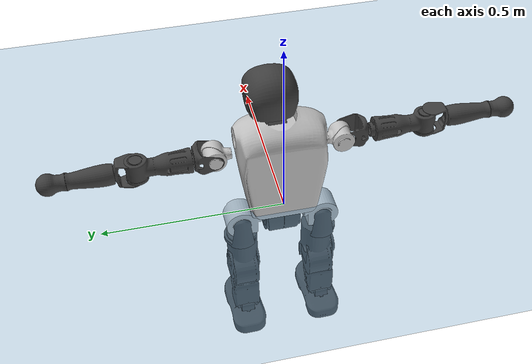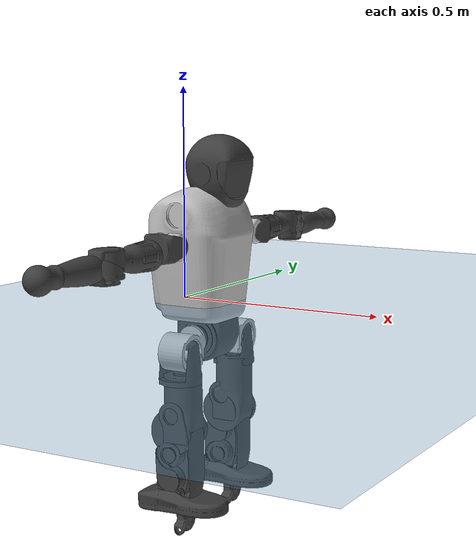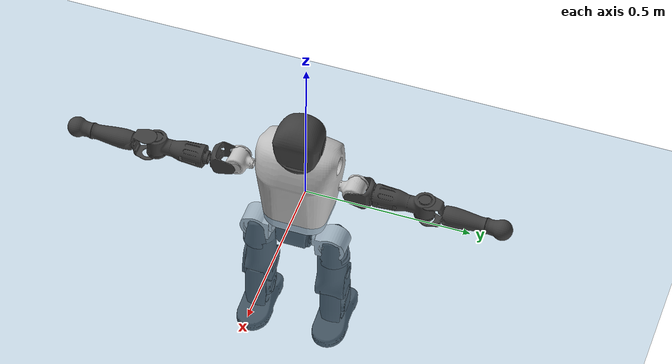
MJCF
<mujoco model="T1">
  <compiler angle="radian" assetdir="assets" balanceinertia="true" inertiafromgeom="false"/>

  <option timestep="0.005" density="1.2" viscosity="2e-05"/>

  <size nkey="1"/>

  <visual>
    <quality shadowsize="8192"/>
    <map shadowclip="0.5"/>
  </visual>

  <default>
    <default class="/">
      <joint armature="0.01" damping="0.01" frictionloss="0.1"/>
      <geom contype="0" conaffinity="0" group="1" solref="-1000 -80"/>
      <site size="0.01 0.005 0.005" group="5"/>
      <general forcelimited="true" biastype="affine" gainprm="25" biasprm="0 -25 -0.6"/>
      <default class="t1">
        <geom rgba="0.25 0.25 0.25 1"/>
        <default class="visual">
          <geom type="mesh" group="2"/>
        </default>
        <default class="collision">
          <geom group="3"/>
        </default>
        <default class="foot">
          <geom size="0.1115 0.05 0.015" type="box" condim="6" group="4" priority="1" solimp="0.015 1 0.015"/>
        </default>
        <default class="reward_collision_sphere">
          <geom group="5" rgba="1 0 0 1"/>
        </default>
      </default>
    </default>
  </default>

  <asset>
    <texture type="skybox" colorspace="auto" name="//unnamed_texture_0" builtin="gradient" rgb1="0.95 0.95 0.95" rgb2="0.95 0.95 0.95" width="100" height="600"/>
    <texture type="2d" colorspace="auto" name="texplane" builtin="checker" rgb1="0.345 0.575 0.748" rgb2="0.345 0.575 0.748" markrgb="1 1 1" width="512" height="512"/>
    <material name="MatPlane" class="/" texture="texplane" texuniform="true" texrepeat="2 2" specular="0.9"/>
    <mesh name="Trunk" class="/" file="Trunk.stl"/>
    <mesh name="H1" class="/" file="H1.stl"/>
    <mesh name="H2" class="/" file="H2.stl"/>
    <mesh name="AL1" class="/" file="AL1.stl"/>
    <mesh name="AL2" class="/" file="AL2.stl"/>
    <mesh name="AL3" class="/" file="AL3.stl"/>
    <mesh name="left_hand_link" class="/" file="left_hand_link.stl"/>
    <mesh name="AR1" class="/" file="AR1.stl"/>
    <mesh name="AR2" class="/" file="AR2.stl"/>
    <mesh name="AR3" class="/" file="AR3.stl"/>
    <mesh name="right_hand_link" class="/" file="right_hand_link.stl"/>
    <mesh name="Waist" class="/" file="Waist.stl"/>
    <mesh name="Hip_Pitch_Left" class="/" file="Hip_Pitch_Left.stl"/>
    <mesh name="Hip_Roll_Left" class="/" file="Hip_Roll_Left.stl"/>
    <mesh name="Hip_Yaw_Left" class="/" file="Hip_Yaw_Left.stl"/>
    <mesh name="Shank_Left" class="/" file="Shank_Left.stl"/>
    <mesh name="Ankle_Cross_Left" class="/" file="Ankle_Cross_Left.stl"/>
    <mesh name="left_foot_link" class="/" file="left_foot_link.stl"/>
    <mesh name="Hip_Pitch_Right" class="/" file="Hip_Pitch_Right.stl"/>
    <mesh name="Hip_Roll_Right" class="/" file="Hip_Roll_Right.stl"/>
    <mesh name="Hip_Yaw_Right" class="/" file="Hip_Yaw_Right.stl"/>
    <mesh name="Shank_Right" class="/" file="Shank_Right.stl"/>
    <mesh name="Ankle_Cross_Right" class="/" file="Ankle_Cross_Right.stl"/>
    <mesh name="right_foot_link" class="/" file="right_foot_link.stl"/>
  </asset>

  <worldbody>
    <geom name="floor" class="/" size="100 100 0.125" type="plane" group="0" material="MatPlane"/>
    <light name="toplight_shadow" class="/" pos="0 0 5" dir="0.0990148 0.0990148 -0.990148" type="directional" ambient="0.04 0.04 0.04" diffuse="0.55 0.55 0.55" specular="0.12 0.12 0.12"/>
    <light name="toplight_fill" class="/" pos="0 0 5" dir="0.0990148 0.0990148 -0.990148" type="directional" castshadow="false" ambient="0.04 0.04 0.04" diffuse="0.3 0.3 0.3" specular="0.08 0.08 0.08"/>
    <body name="trunk" childclass="t1" pos="-0.00155752 -0.000357043 -0.00799581" quat="1 0.000124042 -0.000279831 -0.000277181">
      <inertial pos="0.0650175 -0.0031153 0.0757744" quat="0.999638 -0.0169008 -0.0201387 -0.00566054" mass="13.1874" diaginertia="0.208991 0.169012 0.0106185"/>
      <joint name="//unnamed_joint_0" type="free" armature="0" damping="0" frictionloss="0"/>
      <geom name="//unnamed_geom_1" class="visual" rgba="0.76 0.76 0.76 1" mesh="Trunk"/>
      <geom name="//unnamed_geom_2" class="collision" size="0.0759684 0.101291 0.151937" pos="0.0699467 0 0.0843658" type="box"/>
      <geom name="//unnamed_geom_3" class="reward_collision_sphere" size="0.116485" pos="0.0699467 0 0.0703048"/>
      <geom name="//unnamed_geom_4" class="reward_collision_sphere" size="0.0151937" pos="0.0699467 0.0994422 0"/>
      <geom name="//unnamed_geom_5" class="reward_collision_sphere" size="0.0151937" pos="0.0699467 -0.0994422 0"/>
      <geom name="//unnamed_geom_6" class="reward_collision_sphere" size="0.0151937" pos="0.0699467 0.12518 0.126549"/>
      <geom name="//unnamed_geom_7" class="reward_collision_sphere" size="0.0151937" pos="0.0699467 -0.12518 0.126549"/>
      <site name="imu" pos="-0.05753 0.0470674 -0.0162435" size="0.0101291"/>
      <camera name="track" pos="0 -2.33982 0" quat="0.707107 0.707107 0 0" mode="trackcom"/>
      <camera name="ego_camera" pos="0.142225 0 0.29528" quat="-0.5 -0.5 0.5 0.5"/>
      <body name="H1" pos="0.0755129 0.00509631 0.167093" quat="0.999997 0.00195854 -0.00139821 -0.000549329">
        <inertial pos="-0.00272056 -0.00155191 0.0408555" quat="0.762347 -0.0074527 -0.00417611 0.647113" mass="0.439448" diaginertia="0.000465237 0.000480167 2.23493e-05"/>
        <joint name="AAHead_yaw" pos="0 0 0" axis="0.00101978 -0.00921363 0.999957" range="-1.63366 1.45751" armature="0.00941246" damping="0.00798823" frictionloss="0.108427"/>
        <geom name="//unnamed_geom_8" class="visual" mesh="H1"/>
        <body name="H2" pos="0.000538655 0.0100334 0.0433016" quat="1 0.000297174 0.000478826 0.00064307">
          <inertial pos="-0.00284456 -0.00911744 0.0630972" quat="0.988393 0.0978834 -0.0795095 -0.0847179" mass="0.574375" diaginertia="0.0043231 0.00441775 0.000301219"/>
          <joint name="Head_pitch" pos="0 0 0" axis="0.00320568 -0.999983 -0.00490706" range="-1.21925 0.224974" armature="0.0149187" damping="0.0293148" frictionloss="0.101075"/>
          <geom name="//unnamed_geom_9" class="visual" mesh="H2"/>
          <geom name="//unnamed_geom_10" class="collision" size="0.0810329" pos="0.0116578 0 0.0773353"/>
          <geom name="//unnamed_geom_11" class="reward_collision_sphere" size="0.0911621" pos="0.0233156 0 0.0703048"/>
        </body>
      </body>
      <body name="AL1" pos="0.0748933 0.127984 0.156416" quat="0.999998 -0.000353862 0.000595712 0.00182362">
        <inertial pos="-0.00453048 0.0484776 -0.010199" quat="0.51116 0.495643 -0.515121 0.477184" mass="0.568597" diaginertia="0.00300837 0.00288371 4.91783e-05"/>
        <joint name="Left_Shoulder_Pitch" pos="0 0 0" axis="0.00766674 0.999953 -0.00591712" stiffness="0.0438699" range="-3.115 1.34509" armature="0.0100248" damping="0.0112135" frictionloss="0.0972818"/>
        <geom name="//unnamed_geom_12" class="visual" rgba="0.76 0.76 0.76 1" mesh="AL1"/>
        <body name="AL2" pos="0.00232466 0.0452825 -0.00123039" quat="0.999983 -2.61883e-05 -0.00321068 0.00481144">
          <inertial pos="0.000965558 0.0425382 0.00764388" quat="0.488673 0.51216 -0.487848 0.510779" mass="0.12295" diaginertia="0.000740201 0.000594174 2.65119e-05"/>
          <joint name="Left_Shoulder_Roll" pos="0 0 0" axis="-0.998 0.0192432 0.0602206" stiffness="0.022327" range="-1.45835 1.7804" armature="0.00795206" damping="0.0598524" frictionloss="0.114616"/>
          <geom name="//unnamed_geom_13" class="visual" mesh="AL2"/>
          <body name="AL3" pos="-0.00265685 0.0611439 -0.00083376" quat="0.999982 -0.00238613 0.00552351 0.000733027">
            <inertial pos="0.00111345 0.101285 0.00105282" quat="0.683847 0.72906 0.0260232 -0.0121815" mass="0.920685" diaginertia="0.0237644 0.0249614 9.79647e-05"/>
            <joint name="Left_Elbow_Pitch" pos="0 0 0" axis="0.00201885 -0.999941 0.0107198" range="-2.19523 2.29792" armature="0.0109472" damping="0.00691144" frictionloss="0.110257"/>
            <geom name="//unnamed_geom_14" class="visual" mesh="AL3"/>
            <geom name="//unnamed_geom_15" class="collision" size="0.0303874 0.0759684" pos="0 0.0584954 0" quat="0.707105 0.707108 0 0" type="cylinder"/>
            <geom name="//unnamed_geom_16" class="reward_collision_sphere" size="0.0364648"/>
            <body name="left_hand_link" pos="0.00478674 0.160979 -0.00593583" quat="0.999987 -0.00321153 -0.00248512 -0.00320347">
              <inertial pos="-0.000103258 0.131886 0.0102134" quat="0.68068 0.731965 0.0104016 -0.0281818" mass="0.396457" diaginertia="0.0190864 0.0209623 4.47267e-05"/>
              <joint name="Left_Elbow_Yaw" pos="0 0 0" axis="-0.0432468 0.00780227 0.999034" stiffness="0.000675577" range="-2.41071 -0.158802" armature="0.0095778" damping="0.0354263" frictionloss="0.0430705"/>
              <geom name="//unnamed_geom_17" class="visual" mesh="left_hand_link"/>
              <geom name="//unnamed_geom_18" class="collision" size="0.0303874 0.0886298" pos="0 0.152088 0" quat="0.707105 0.707108 0 0" type="cylinder"/>
              <geom name="//unnamed_geom_19" class="reward_collision_sphere" size="0.0506456"/>
              <geom name="//unnamed_geom_20" class="reward_collision_sphere" size="0.0354519" pos="0 0.12869 0"/>
              <geom name="//unnamed_geom_21" class="reward_collision_sphere" size="0.0354519" pos="0 0.25153 0"/>
            </body>
          </body>
        </body>
      </body>
      <body name="AR1" pos="0.0759305 -0.131159 0.155926" quat="1 -4.57897e-05 0.000489732 4.26705e-05">
        <inertial pos="0.000795667 -0.0518665 0.000854978" quat="0.50137 0.501657 -0.502751 0.494176" mass="0.516021" diaginertia="0.00296807 0.0028359 4.8602e-05"/>
        <joint name="Right_Shoulder_Pitch" pos="0 0 0" axis="-0.0100654 -0.999733 -0.0208009" range="-1.4328 3.30027" armature="0.0092729" damping="0" frictionloss="0.0963647"/>
        <geom name="//unnamed_geom_22" class="visual" rgba="0.76 0.76 0.76 1" mesh="AR1"/>
        <body name="AR2" pos="0.0101799 -0.0625906 0.0028574" quat="0.999998 -0.00106966 -0.00190631 7.43531e-05">
          <inertial pos="0.00966226 -0.0475203 0.00705709" quat="0.499649 0.477757 -0.513287 0.508562" mass="0.160729" diaginertia="0.000933374 0.000836533 2.97273e-05"/>
          <joint name="Right_Shoulder_Roll" pos="0 0 0" axis="-0.999946 -0.00515033 -0.00905693" range="-1.83005 1.77798" armature="0.0110428" damping="0.00579748" frictionloss="0.151472"/>
          <geom name="//unnamed_geom_23" class="visual" mesh="AR2"/>
          <body name="AR3" pos="0.00458879 -0.0821402 -0.00945239" quat="1 0.000271882 -0.000222897 -0.00014941">
            <inertial pos="-0.000342906 -0.0983339 0.00105356" quat="0.725562 0.686016 0.0208905 -0.0500549" mass="1.13526" diaginertia="0.0297113 0.0262698 0.000109488"/>
            <joint name="Right_Elbow_Pitch" pos="0 0 0" axis="-0.000871896 1 -0.000181729" range="-2.29641 2.2326" armature="0.0101955" damping="0" frictionloss="0.0474996"/>
            <geom name="//unnamed_geom_24" class="visual" mesh="AR3"/>
            <geom name="//unnamed_geom_25" class="collision" size="0.0303874 0.0759684" pos="0 -0.0584954 0" quat="0.707105 0.707108 0 0" type="cylinder"/>
            <geom name="//unnamed_geom_26" class="reward_collision_sphere" size="0.0364648"/>
            <body name="right_hand_link" pos="0.0093474 -0.171767 -0.00202407" quat="0.999997 -0.000775243 -0.00180747 0.00123231">
              <inertial pos="-5.51717e-06 -0.127483 -0.00970262" quat="0.685109 0.727388 -0.0131047 0.0368929" mass="0.387301" diaginertia="0.0215346 0.0207395 4.1768e-05"/>
              <joint name="Right_Elbow_Yaw" pos="0 0 0" axis="0.00313836 0.0049311 0.999983" range="0.15879 2.42674" armature="0.0038462" damping="0.0239873" frictionloss="0.0999139"/>
              <geom name="//unnamed_geom_27" class="visual" mesh="right_hand_link"/>
              <geom name="//unnamed_geom_28" class="collision" size="0.0303874 0.0886298" pos="0 -0.152088 0" quat="0.707105 0.707108 0 0" type="cylinder"/>
              <geom name="//unnamed_geom_29" class="reward_collision_sphere" size="0.0506456"/>
              <geom name="//unnamed_geom_30" class="reward_collision_sphere" size="0.0354519" pos="0 -0.12869 0"/>
              <geom name="//unnamed_geom_31" class="reward_collision_sphere" size="0.0354519" pos="0 -0.25153 0"/>
            </body>
          </body>
        </body>
      </body>
      <body name="Waist" pos="0.0686618 -0.00246774 -0.0733413" quat="1 0.000229799 -0.000289253 0.000124398">
        <inertial pos="-0.00772159 -0.000550908 0.00571587" quat="0.98665 -0.00227278 -0.162663 0.00755216" mass="2.72263" diaginertia="0.012669 0.014461 0.000897279"/>
        <joint name="Waist" pos="0 0 0" axis="-0.000480468 0.00939839 0.999956" range="-1.8038 1.50019" armature="0.0142125" damping="0.00994231" frictionloss="0.0966863"/>
        <geom name="//unnamed_geom_32" class="visual" mesh="Waist"/>
        <body name="Hip_Pitch_Left" pos="0.0100325 0.114686 -0.00260766" quat="0.999986 0.00465446 0.000820002 0.00250736">
          <inertial pos="0.00625128 -0.0198666 -0.0142634" quat="0.976443 0.214979 0.0177333 0.00543766" mass="1.14752" diaginertia="0.00427049 0.00291794 0.000235784"/>
          <joint name="Left_Hip_Pitch" pos="0 0 0" axis="1.19638e-05 0.999999 -0.00107297" range="-1.80381 1.44728" armature="0.0100365" damping="0" frictionloss="0.102681"/>
          <geom name="//unnamed_geom_33" class="visual" rgba="0.76 0.76 0.76 1" mesh="Hip_Pitch_Left"/>
          <body name="Hip_Roll_Left" pos="-0.00510091 0.00123105 -0.0113571" quat="0.999989 1.67307e-05 -0.000853163 0.00458618">
            <inertial pos="0.00195146 -0.00154728 -0.0362146" quat="0.710449 -0.00185621 0.000231173 0.703746" mass="0.41108" diaginertia="0.00376552 0.00380376 0.000100626"/>
            <joint name="Left_Hip_Roll" pos="0 0 0" axis="-0.999991 -0.00418044 -0.000454761" stiffness="0.0266727" range="-1.59421 0.237744" armature="0.0104513" damping="0.00183137" frictionloss="0.0606115"/>
            <geom name="//unnamed_geom_34" class="visual" mesh="Hip_Roll_Left"/>
            <geom name="//unnamed_geom_35" class="reward_collision_sphere" size="0.0557101"/>
            <body name="Hip_Yaw_Left" pos="0.000848373 -0.00476575 -0.0575538" quat="0.999996 -0.00202615 0.000337646 0.0021415">
              <inertial pos="-0.00830626 -0.000913694 -0.0629071" quat="0.719521 0.0101095 -0.0138987 0.694258" mass="2.38129" diaginertia="0.0559257 0.0638544 0.00042085"/>
              <joint name="Left_Hip_Yaw" pos="0 0 0" axis="0.0442595 0.0165924 -0.998882" range="-0.989371 1.0183" armature="0.0104174" damping="0.00740015" frictionloss="0.100857"/>
              <geom name="//unnamed_geom_36" class="visual" mesh="Hip_Yaw_Left"/>
              <geom name="//unnamed_geom_37" class="collision" size="0.0506456 0.0810329" type="cylinder"/>
              <body name="Shank_Left" pos="-0.0168168 0.00147936 -0.0932882" quat="0.999997 0.00181812 -0.00140853 0.000872101">
                <inertial pos="-0.00835975 -0.00203789 -0.0893366" quat="0.997955 0.0123423 0.0132416 0.0612995" mass="1.72736" diaginertia="0.0792936 0.0698785 0.000325218"/>
                <joint name="Left_Knee_Pitch" pos="0 0 0" axis="-0.00456761 0.999883 0.0146267" range="-0.0599221 2.34675" armature="0.00904801" damping="0" frictionloss="0.0558791"/>
                <geom name="//unnamed_geom_38" class="visual" mesh="Shank_Left"/>
                <geom name="//unnamed_geom_39" class="collision" size="0.0506456 0.0759684" pos="0 0 -0.0843658" type="cylinder"/>
                <geom name="//unnamed_geom_40" class="reward_collision_sphere" size="0.0658393"/>
                <body name="Ankle_Cross_Left" pos="0.00356313 6.75679e-05 -0.19971" quat="0.999996 0.00167539 -0.000753067 0.00222109">
                  <inertial pos="-0.00467998 -0.00458139 0.00613274" quat="0.448245 0.55825 0.546676 0.434257" mass="0.0667505" diaginertia="4.85391e-05 5.34319e-05 1.8265e-06"/>
                  <joint name="Left_Ankle_Pitch" pos="0 0 0" axis="-0.00222317 0.999688 -0.0248758" range="-0.631457 0.240475" armature="0.0126501" damping="0" frictionloss="0.0539714"/>
                  <geom name="//unnamed_geom_41" class="visual" mesh="Ankle_Cross_Left"/>
                  <body name="left_foot_link" pos="-0.00962071 0.000902715 0.00186351" quat="0.999999 0.00109199 0.000441388 -0.000550108">
                    <inertial pos="0.00189569 0.0103641 -0.00713746" quat="-0.00659246 0.623177 -0.0046749 0.782039" mass="0.743913" diaginertia="0.00528738 0.00522176 0.000363125"/>
                    <joint name="Left_Ankle_Roll" pos="0 0 0" axis="-0.999943 -0.00969493 0.00441172" range="-0.321549 0.505898" armature="0.0102874" damping="0.0167369" frictionloss="0.104709"/>
                    <geom name="//unnamed_geom_42" class="visual" mesh="left_foot_link"/>
                    <geom name="left_foot" class="foot" size="0.0999989 0.0424784 0.0128514" pos="0.0116578 0 -0.0105457"/>
                    <geom name="//unnamed_geom_44" class="reward_collision_sphere" size="0.0526714" pos="0.0116578 0 -0.0105457"/>
                    <geom name="//unnamed_geom_45" class="reward_collision_sphere" size="0.0303874" pos="0.110749 -0.0269079 -0.0105457"/>
                    <geom name="//unnamed_geom_46" class="reward_collision_sphere" size="0.0303874" pos="-0.0816045 -0.0269079 -0.0105457"/>
                    <site name="left_foot" class="foot" pos="0.0116578 0 -0.0105457" size="0.0101291"/>
                  </body>
                </body>
              </body>
            </body>
          </body>
        </body>
        <body name="Hip_Pitch_Right" pos="0.000856425 -0.121964 -0.0015425" quat="0.999997 -0.00221302 0.00126641 -0.000451453">
          <inertial pos="0.0024148 0.00686809 -0.0229699" quat="0.980747 -0.19352 -0.00210994 -0.026102" mass="1.03559" diaginertia="0.00382724 0.00312306 0.000189536"/>
          <joint name="Right_Hip_Pitch" pos="0 0 0" axis="0.0174672 -0.999154 0.0372312" stiffness="0.0208118" range="-1.59952 1.77981" armature="0.00615394" damping="0.0119639" frictionloss="0.075259"/>
          <geom name="//unnamed_geom_47" class="visual" rgba="0.76 0.76 0.76 1" mesh="Hip_Pitch_Right"/>
          <body name="Hip_Roll_Right" pos="-0.0024133 0.00456935 -0.016902" quat="0.999982 0.000645979 -0.00501409 0.00308253">
            <inertial pos="-0.0101581 -0.00250915 -0.0311207" quat="0.732448 0.0110218 -0.00945919 0.680668" mass="0.434957" diaginertia="0.0044456 0.00357239 9.71659e-05"/>
            <joint name="Right_Hip_Roll" pos="0 0 0" axis="-0.999924 -0.00242417 -0.012065" stiffness="0.00102539" range="-0.192885 1.40852" armature="0.0107817" damping="0" frictionloss="0.099272"/>
            <geom name="//unnamed_geom_48" class="visual" mesh="Hip_Roll_Right"/>
            <geom name="//unnamed_geom_49" class="reward_collision_sphere" size="0.0557101"/>
            <body name="Hip_Yaw_Right" pos="-0.000335479 0.00767228 -0.0568036" quat="0.999988 -0.000301208 -0.00377379 0.00310737">
              <inertial pos="-0.0139999 0.000158702 -0.0651447" quat="0.710239 -0.0510705 -0.0583872 0.699673" mass="1.91359" diaginertia="0.0428119 0.0415256 0.000370346"/>
              <joint name="Right_Hip_Yaw" pos="0 0 0" axis="0.00293565 0.0119987 -0.999924" range="-1.05371 1.23365" armature="0.00955804" damping="0.00308148" frictionloss="0.151572"/>
              <geom name="//unnamed_geom_50" class="visual" mesh="Hip_Yaw_Right"/>
              <geom name="//unnamed_geom_51" class="collision" size="0.0506456 0.0810329" type="cylinder"/>
              <body name="Shank_Right" pos="-0.00582018 -0.00666359 -0.0907634" quat="0.999988 0.00178743 -0.00408993 0.00193408">
                <inertial pos="-0.0162663 -0.00512385 -0.086525" quat="0.999188 0.00155273 -0.0308404 -0.0258647" mass="1.58851" diaginertia="0.0763313 0.0853253 0.000369696"/>
                <joint name="Right_Knee_Pitch" pos="0 0 0" axis="0.00135585 -0.999999 0.000248074" range="-2.30741 -0.0287144" armature="0.0108362" damping="0" frictionloss="0.0826085"/>
                <geom name="//unnamed_geom_52" class="visual" mesh="Shank_Right"/>
                <geom name="//unnamed_geom_53" class="collision" size="0.0506456 0.0759684" pos="0 0 -0.0843658" type="cylinder"/>
                <geom name="//unnamed_geom_54" class="reward_collision_sphere" size="0.0658393"/>
                <body name="Ankle_Cross_Right" pos="0.00176713 -0.000615206 -0.189528" quat="0.999989 -0.00210523 -0.0031408 0.00279239">
                  <inertial pos="-0.00512875 0.00101916 -0.0065059" quat="0.428313 0.55457 0.560158 0.441841" mass="0.0922731" diaginertia="6.76518e-05 6.1229e-05 2.10406e-06"/>
                  <joint name="Right_Ankle_Pitch" pos="0 0 0" axis="0.0457945 -0.99821 -0.0384665" range="-0.357903 1.00963" armature="0.00605545" damping="0.0373206" frictionloss="0.160434"/>
                  <geom name="//unnamed_geom_55" class="visual" mesh="Ankle_Cross_Right"/>
                  <body name="right_foot_link" pos="-0.00689439 0.000154317 -0.0116997" quat="0.999997 0.002235 -0.000910588 -0.000535815">
                    <inertial pos="-0.00177874 0.000569372 0.00263881" quat="0.000970369 0.62045 -0.000133058 0.784246" mass="0.608693" diaginertia="0.00603176 0.00505836 0.000378677"/>
                    <joint name="Right_Ankle_Roll" pos="0 0 0" axis="-0.999192 -0.0158736 0.0369355" range="-0.677586 0.35444" armature="0.0142863" damping="0.0118327" frictionloss="0.106307"/>
                    <geom name="//unnamed_geom_56" class="visual" mesh="right_foot_link"/>
                    <geom name="right_foot" class="foot" size="0.15925 0.0337968 0.0132711" pos="0.0116578 0 -0.0105457"/>
                    <geom name="//unnamed_geom_58" class="reward_collision_sphere" size="0.0405165"/>
                    <geom name="//unnamed_geom_59" class="reward_collision_sphere" size="0.0303874" pos="0.0116578 0 -0.0105457"/>
                    <geom name="//unnamed_geom_60" class="reward_collision_sphere" size="0.0303874" pos="0.110749 0.0269079 -0.0105457"/>
                    <geom name="//unnamed_geom_61" class="reward_collision_sphere" size="0.0303874" pos="-0.0816045 0.0269079 -0.0105457"/>
                    <site name="right_foot" class="foot" pos="0.0116578 0 -0.0105457" size="0.0101291"/>
                  </body>
                </body>
              </body>
            </body>
          </body>
        </body>
      </body>
    </body>
  </worldbody>

  <contact>
    <pair class="/" geom1="floor" geom2="left_foot" name="//unnamed_contact_0"/>
    <pair class="/" geom1="floor" geom2="right_foot" name="//unnamed_contact_1"/>
  </contact>

  <actuator>
    <general name="AAHead_yaw" class="/" joint="AAHead_yaw" forcerange="-8.21561 8.21561" gainprm="20.4062" biasprm="0 -20.4062 -0.568105"/>
    <general name="Head_pitch" class="/" joint="Head_pitch" forcerange="-7.23237 7.23237" gainprm="20.4062" biasprm="0 -20.4062 -0.568105"/>
    <general name="Left_Shoulder_Pitch" class="/" joint="Left_Shoulder_Pitch" forcerange="-16.6259 16.6259" gainprm="20.4062" biasprm="0 -20.4062 -0.568105"/>
    <general name="Left_Shoulder_Roll" class="/" joint="Left_Shoulder_Roll" forcerange="-17.0704 17.0704" gainprm="20.4062" biasprm="0 -20.4062 -0.568105"/>
    <general name="Left_Elbow_Pitch" class="/" joint="Left_Elbow_Pitch" forcerange="-12.3395 12.3395" gainprm="20.4062" biasprm="0 -20.4062 -0.568105"/>
    <general name="Left_Elbow_Yaw" class="/" joint="Left_Elbow_Yaw" forcerange="-18.451 18.451" gainprm="20.4062" biasprm="0 -20.4062 -0.568105"/>
    <general name="Right_Shoulder_Pitch" class="/" joint="Right_Shoulder_Pitch" forcerange="-19.1241 19.1241" gainprm="20.4062" biasprm="0 -20.4062 -0.568105"/>
    <general name="Right_Shoulder_Roll" class="/" joint="Right_Shoulder_Roll" forcerange="-18.4595 18.4595" gainprm="20.4062" biasprm="0 -20.4062 -0.568105"/>
    <general name="Right_Elbow_Pitch" class="/" joint="Right_Elbow_Pitch" forcerange="-19.5536 19.5536" gainprm="20.4062" biasprm="0 -20.4062 -0.568105"/>
    <general name="Right_Elbow_Yaw" class="/" joint="Right_Elbow_Yaw" forcerange="-12.0363 12.0363" gainprm="20.4062" biasprm="0 -20.4062 -0.568105"/>
    <general name="Waist" class="/" joint="Waist" forcerange="-26.1477 26.1477" gainprm="20.4062" biasprm="0 -20.4062 -0.568105"/>
    <general name="Left_Hip_Pitch" class="/" joint="Left_Hip_Pitch" forcerange="-65.4799 65.4799" gainprm="20.4062" biasprm="0 -20.4062 -0.568105"/>
    <general name="Left_Hip_Roll" class="/" joint="Left_Hip_Roll" forcerange="-29.7822 29.7822" gainprm="20.4062" biasprm="0 -20.4062 -0.568105"/>
    <general name="Left_Hip_Yaw" class="/" joint="Left_Hip_Yaw" forcerange="-27.9216 27.9216" gainprm="20.4062" biasprm="0 -20.4062 -0.568105"/>
    <general name="Left_Knee_Pitch" class="/" joint="Left_Knee_Pitch" forcerange="-39.6137 39.6137" gainprm="20.4062" biasprm="0 -20.4062 -0.568105"/>
    <general name="Left_Ankle_Pitch" class="/" joint="Left_Ankle_Pitch" forcerange="-20.1648 20.1648" gainprm="20.4062" biasprm="0 -20.4062 -0.568105"/>
    <general name="Left_Ankle_Roll" class="/" joint="Left_Ankle_Roll" forcerange="-14.6086 14.6086" gainprm="20.4062" biasprm="0 -20.4062 -0.568105"/>
    <general name="Right_Hip_Pitch" class="/" joint="Right_Hip_Pitch" forcerange="-27.5108 27.5108" gainprm="20.4062" biasprm="0 -20.4062 -0.568105"/>
    <general name="Right_Hip_Roll" class="/" joint="Right_Hip_Roll" forcerange="-29.3257 29.3257" gainprm="20.4062" biasprm="0 -20.4062 -0.568105"/>
    <general name="Right_Hip_Yaw" class="/" joint="Right_Hip_Yaw" forcerange="-27.9778 27.9778" gainprm="20.4062" biasprm="0 -20.4062 -0.568105"/>
    <general name="Right_Knee_Pitch" class="/" joint="Right_Knee_Pitch" forcerange="-46.9425 46.9425" gainprm="20.4062" biasprm="0 -20.4062 -0.568105"/>
    <general name="Right_Ankle_Pitch" class="/" joint="Right_Ankle_Pitch" forcerange="-23.2625 23.2625" gainprm="20.4062" biasprm="0 -20.4062 -0.568105"/>
    <general name="Right_Ankle_Roll" class="/" joint="Right_Ankle_Roll" forcerange="-21.2493 21.2493" gainprm="20.4062" biasprm="0 -20.4062 -0.568105"/>
  </actuator>

  <sensor>
    <gyro site="imu" name="imu_angular_velocity"/>
    <velocimeter site="imu" name="imu_linear_velocity"/>
    <framelinvel objtype="site" objname="left_foot" name="left_foot_global_linear_velocity"/>
    <framelinvel objtype="site" objname="right_foot" name="right_foot_global_linear_velocity"/>
  </sensor>

  <keyframe>
    <key name="home" qpos="0 0 0.6385 1 0 0 0 0 0 0 1.4 0 -0.4 0 -1.4 0 0.4 0 -0.4 0 0 0.8 -0.4 0 0.4 0 0 -0.8 0.4 0"/>
  </keyframe>
</mujoco>
